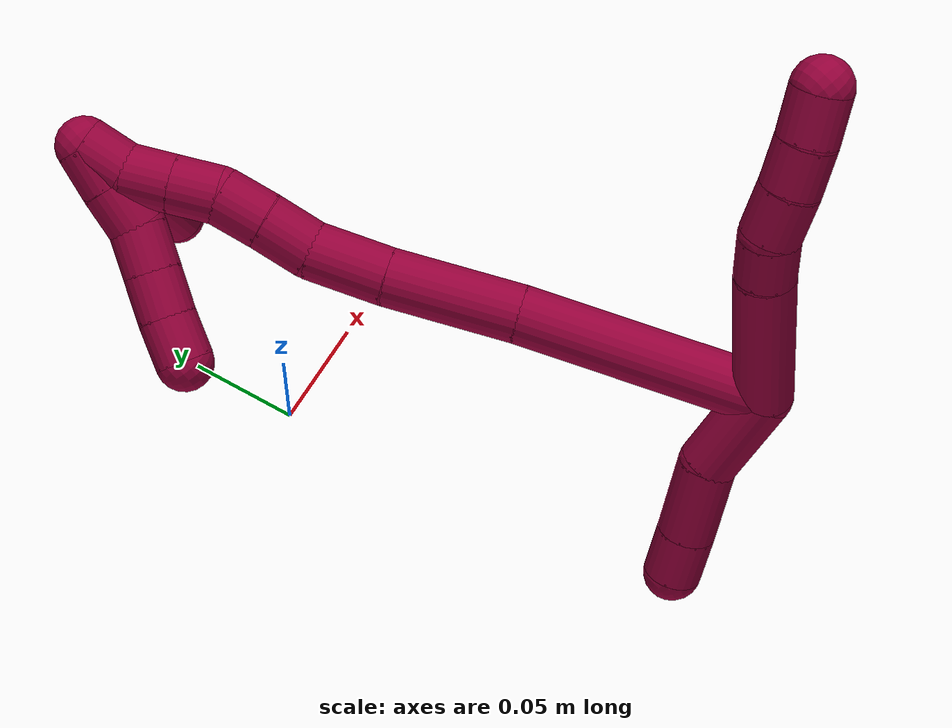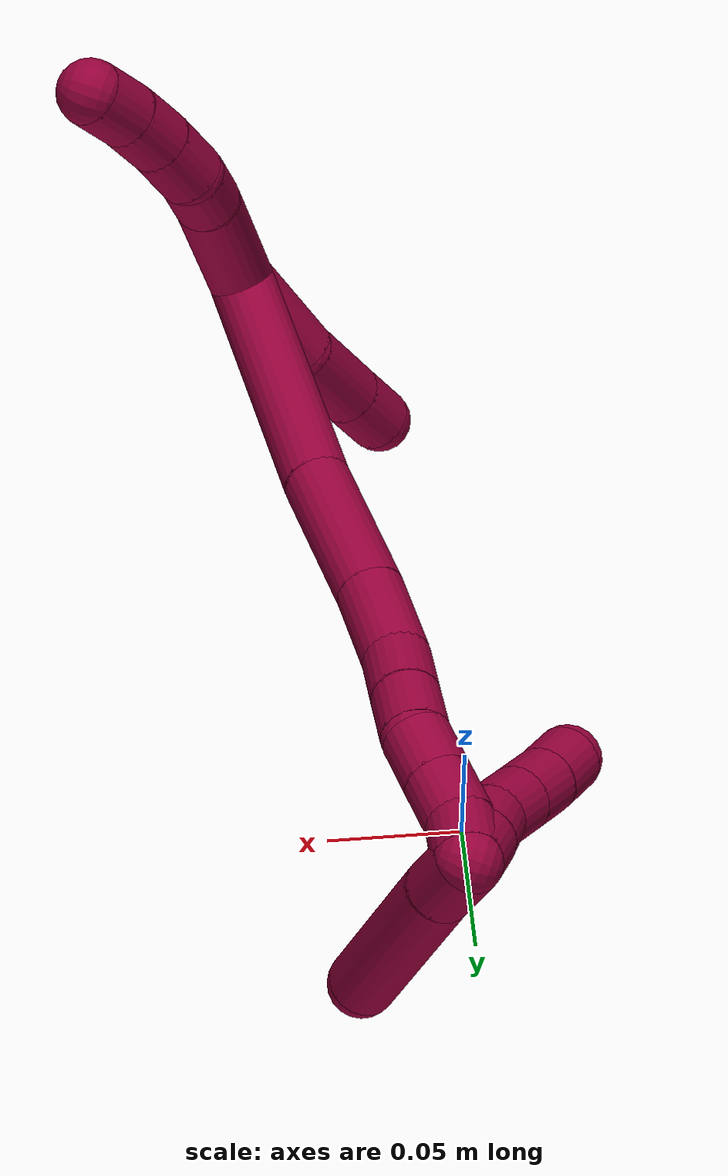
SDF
<sdf version="1.7">
 <world name="default">
  <model name="8">
   <static>0</static>
   <link name="8">
    <collision name="collision-cylinder-e_1_2_8">
     <pose>0.023971 0.021354 -0.010602 -2.03162 0.788124 -1.18155</pose>
     <geometry><cylinder><radius>0.0125</radius><length>0.067616</length></cylinder></geometry>
     <surface>
      <friction><ode><mu>1.16</mu><mu2>1.16</mu2><slip1>0</slip1><slip2>0</slip2></ode></friction>
      <contact><ode><kp>1e+06</kp><kd>1</kd><max_vel>0</max_vel><min_depth>0.001</min_depth></ode></contact>
     </surface>
    </collision>
    <visual name="visual-cylinder-e_1_2_8">
     <pose>0.023971 0.021354 -0.010602 -2.03162 0.788124 -1.18155</pose>
     <geometry><cylinder><radius>0.0125</radius><length>0.067616</length></cylinder></geometry>
     <material><ambient>0.584314 0 0.227451 1</ambient></material>
    </visual>
    <collision name="collision-cylinder-e_2_8_9">
     <pose>0.054809 0.048769 -0.02526 -2.1606 0.755319 -1.27781</pose>
     <geometry><cylinder><radius>0.0125</radius><length>0.020036</length></cylinder></geometry>
     <surface>
      <friction><ode><mu>1.16</mu><mu2>1.16</mu2><slip1>0</slip1><slip2>0</slip2></ode></friction>
      <contact><ode><kp>1e+06</kp><kd>1</kd><max_vel>0</max_vel><min_depth>0.001</min_depth></ode></contact>
     </surface>
    </collision>
    <visual name="visual-cylinder-e_2_8_9">
     <pose>0.054809 0.048769 -0.02526 -2.1606 0.755319 -1.27781</pose>
     <geometry><cylinder><radius>0.0125</radius><length>0.020036</length></cylinder></geometry>
     <material><ambient>0.584314 0 0.227451 1</ambient></material>
    </visual>
    <collision name="collision-cylinder-e_3_9_10">
     <pose>0.068176 0.059757 -0.036493 -2.53995 0.641335 -1.63894</pose>
     <geometry><cylinder><radius>0.0125</radius><length>0.021726</length></cylinder></geometry>
     <surface>
      <friction><ode><mu>1.16</mu><mu2>1.16</mu2><slip1>0</slip1><slip2>0</slip2></ode></friction>
      <contact><ode><kp>1e+06</kp><kd>1</kd><max_vel>0</max_vel><min_depth>0.001</min_depth></ode></contact>
     </surface>
    </collision>
    <visual name="visual-cylinder-e_3_9_10">
     <pose>0.068176 0.059757 -0.036493 -2.53995 0.641335 -1.63894</pose>
     <geometry><cylinder><radius>0.0125</radius><length>0.021726</length></cylinder></geometry>
     <material><ambient>0.584314 0 0.227451 1</ambient></material>
    </visual>
    <collision name="collision-cylinder-e_4_10_11">
     <pose>0.079995 0.06985 -0.050425 -2.48881 0.558963 -1.40649</pose>
     <geometry><cylinder><radius>0.0125</radius><length>0.020065</length></cylinder></geometry>
     <surface>
      <friction><ode><mu>1.16</mu><mu2>1.16</mu2><slip1>0</slip1><slip2>0</slip2></ode></friction>
      <contact><ode><kp>1e+06</kp><kd>1</kd><max_vel>0</max_vel><min_depth>0.001</min_depth></ode></contact>
     </surface>
    </collision>
    <visual name="visual-cylinder-e_4_10_11">
     <pose>0.079995 0.06985 -0.050425 -2.48881 0.558963 -1.40649</pose>
     <geometry><cylinder><radius>0.0125</radius><length>0.020065</length></cylinder></geometry>
     <material><ambient>0.584314 0 0.227451 1</ambient></material>
    </visual>
    <collision name="collision-cylinder-e_5_11_6">
     <pose>0.089925 0.080892 -0.064245 -2.44768 0.465043 -1.15964</pose>
     <geometry><cylinder><radius>0.0125</radius><length>0.020557</length></cylinder></geometry>
     <surface>
      <friction><ode><mu>1.16</mu><mu2>1.16</mu2><slip1>0</slip1><slip2>0</slip2></ode></friction>
      <contact><ode><kp>1e+06</kp><kd>1</kd><max_vel>0</max_vel><min_depth>0.001</min_depth></ode></contact>
     </surface>
    </collision>
    <visual name="visual-cylinder-e_5_11_6">
     <pose>0.089925 0.080892 -0.064245 -2.44768 0.465043 -1.15964</pose>
     <geometry><cylinder><radius>0.0125</radius><length>0.020557</length></cylinder></geometry>
     <material><ambient>0.584314 0 0.227451 1</ambient></material>
    </visual>
    <collision name="collision-cylinder-e_1_2_12">
     <pose>-0.012522 -0.00493 0.01552 0.307591 -0.655519 -0.105323</pose>
     <geometry><cylinder><radius>0.0125</radius><length>0.041084</length></cylinder></geometry>
     <surface>
      <friction><ode><mu>1.16</mu><mu2>1.16</mu2><slip1>0</slip1><slip2>0</slip2></ode></friction>
      <contact><ode><kp>1e+06</kp><kd>1</kd><max_vel>0</max_vel><min_depth>0.001</min_depth></ode></contact>
     </surface>
    </collision>
    <visual name="visual-cylinder-e_1_2_12">
     <pose>-0.012522 -0.00493 0.01552 0.307591 -0.655519 -0.105323</pose>
     <geometry><cylinder><radius>0.0125</radius><length>0.041084</length></cylinder></geometry>
     <material><ambient>0.584314 0 0.227451 1</ambient></material>
    </visual>
    <collision name="collision-cylinder-e_2_12_13">
     <pose>-0.03533 -0.019584 0.042369 0.709248 -0.6033 -0.229409</pose>
     <geometry><cylinder><radius>0.0125</radius><length>0.036262</length></cylinder></geometry>
     <surface>
      <friction><ode><mu>1.16</mu><mu2>1.16</mu2><slip1>0</slip1><slip2>0</slip2></ode></friction>
      <contact><ode><kp>1e+06</kp><kd>1</kd><max_vel>0</max_vel><min_depth>0.001</min_depth></ode></contact>
     </surface>
    </collision>
    <visual name="visual-cylinder-e_2_12_13">
     <pose>-0.03533 -0.019584 0.042369 0.709248 -0.6033 -0.229409</pose>
     <geometry><cylinder><radius>0.0125</radius><length>0.036262</length></cylinder></geometry>
     <material><ambient>0.584314 0 0.227451 1</ambient></material>
    </visual>
    <collision name="collision-cylinder-e_3_13_5">
     <pose>-0.051917 -0.035181 0.061055 0.67385 -0.589817 -0.212009</pose>
     <geometry><cylinder><radius>0.0125</radius><length>0.022655</length></cylinder></geometry>
     <surface>
      <friction><ode><mu>1.16</mu><mu2>1.16</mu2><slip1>0</slip1><slip2>0</slip2></ode></friction>
      <contact><ode><kp>1e+06</kp><kd>1</kd><max_vel>0</max_vel><min_depth>0.001</min_depth></ode></contact>
     </surface>
    </collision>
    <visual name="visual-cylinder-e_3_13_5">
     <pose>-0.051917 -0.035181 0.061055 0.67385 -0.589817 -0.212009</pose>
     <geometry><cylinder><radius>0.0125</radius><length>0.022655</length></cylinder></geometry>
     <material><ambient>0.584314 0 0.227451 1</ambient></material>
    </visual>
    <collision name="collision-cylinder-e_1_2_14">
     <pose>-0.010588 0.044446 0.025619 -1.0479 -0.203536 0.117878</pose>
     <geometry><cylinder><radius>0.0125</radius><length>0.104764</length></cylinder></geometry>
     <surface>
      <friction><ode><mu>1.16</mu><mu2>1.16</mu2><slip1>0</slip1><slip2>0</slip2></ode></friction>
      <contact><ode><kp>1e+06</kp><kd>1</kd><max_vel>0</max_vel><min_depth>0.001</min_depth></ode></contact>
     </surface>
    </collision>
    <visual name="visual-cylinder-e_1_2_14">
     <pose>-0.010588 0.044446 0.025619 -1.0479 -0.203536 0.117878</pose>
     <geometry><cylinder><radius>0.0125</radius><length>0.104764</length></cylinder></geometry>
     <material><ambient>0.584314 0 0.227451 1</ambient></material>
    </visual>
    <collision name="collision-cylinder-e_2_14_15">
     <pose>-0.025661 0.112485 0.066522 -0.995971 -0.158189 0.086132</pose>
     <geometry><cylinder><radius>0.0125</radius><length>0.056934</length></cylinder></geometry>
     <surface>
      <friction><ode><mu>1.16</mu><mu2>1.16</mu2><slip1>0</slip1><slip2>0</slip2></ode></friction>
      <contact><ode><kp>1e+06</kp><kd>1</kd><max_vel>0</max_vel><min_depth>0.001</min_depth></ode></contact>
     </surface>
    </collision>
    <visual name="visual-cylinder-e_2_14_15">
     <pose>-0.025661 0.112485 0.066522 -0.995971 -0.158189 0.086132</pose>
     <geometry><cylinder><radius>0.0125</radius><length>0.056934</length></cylinder></geometry>
     <material><ambient>0.584314 0 0.227451 1</ambient></material>
    </visual>
    <collision name="collision-cylinder-e_3_15_16">
     <pose>-0.032949 0.150429 0.089831 -1.06091 -0.1689 0.09922</pose>
     <geometry><cylinder><radius>0.0125</radius><length>0.033359</length></cylinder></geometry>
     <surface>
      <friction><ode><mu>1.16</mu><mu2>1.16</mu2><slip1>0</slip1><slip2>0</slip2></ode></friction>
      <contact><ode><kp>1e+06</kp><kd>1</kd><max_vel>0</max_vel><min_depth>0.001</min_depth></ode></contact>
     </surface>
    </collision>
    <visual name="visual-cylinder-e_3_15_16">
     <pose>-0.032949 0.150429 0.089831 -1.06091 -0.1689 0.09922</pose>
     <geometry><cylinder><radius>0.0125</radius><length>0.033359</length></cylinder></geometry>
     <material><ambient>0.584314 0 0.227451 1</ambient></material>
    </visual>
    <collision name="collision-cylinder-e_4_16_17">
     <pose>-0.036064 0.17558 0.101229 -1.26806 -0.027501 0.020223</pose>
     <geometry><cylinder><radius>0.0125</radius><length>0.022637</length></cylinder></geometry>
     <surface>
      <friction><ode><mu>1.16</mu><mu2>1.16</mu2><slip1>0</slip1><slip2>0</slip2></ode></friction>
      <contact><ode><kp>1e+06</kp><kd>1</kd><max_vel>0</max_vel><min_depth>0.001</min_depth></ode></contact>
     </surface>
    </collision>
    <visual name="visual-cylinder-e_4_16_17">
     <pose>-0.036064 0.17558 0.101229 -1.26806 -0.027501 0.020223</pose>
     <geometry><cylinder><radius>0.0125</radius><length>0.022637</length></cylinder></geometry>
     <material><ambient>0.584314 0 0.227451 1</ambient></material>
    </visual>
    <collision name="collision-cylinder-e_5_17_18">
     <pose>-0.037112 0.196469 0.108113 -1.23594 -0.068892 0.048982</pose>
     <geometry><cylinder><radius>0.0125</radius><length>0.021417</length></cylinder></geometry>
     <surface>
      <friction><ode><mu>1.16</mu><mu2>1.16</mu2><slip1>0</slip1><slip2>0</slip2></ode></friction>
      <contact><ode><kp>1e+06</kp><kd>1</kd><max_vel>0</max_vel><min_depth>0.001</min_depth></ode></contact>
     </surface>
    </collision>
    <visual name="visual-cylinder-e_5_17_18">
     <pose>-0.037112 0.196469 0.108113 -1.23594 -0.068892 0.048982</pose>
     <geometry><cylinder><radius>0.0125</radius><length>0.021417</length></cylinder></geometry>
     <material><ambient>0.584314 0 0.227451 1</ambient></material>
    </visual>
    <collision name="collision-cylinder-e_6_18_19">
     <pose>-0.039486 0.214836 0.117403 -0.961244 -0.160767 0.083956</pose>
     <geometry><cylinder><radius>0.0125</radius><length>0.020452</length></cylinder></geometry>
     <surface>
      <friction><ode><mu>1.16</mu><mu2>1.16</mu2><slip1>0</slip1><slip2>0</slip2></ode></friction>
      <contact><ode><kp>1e+06</kp><kd>1</kd><max_vel>0</max_vel><min_depth>0.001</min_depth></ode></contact>
     </surface>
    </collision>
    <visual name="visual-cylinder-e_6_18_19">
     <pose>-0.039486 0.214836 0.117403 -0.961244 -0.160767 0.083956</pose>
     <geometry><cylinder><radius>0.0125</radius><length>0.020452</length></cylinder></geometry>
     <material><ambient>0.584314 0 0.227451 1</ambient></material>
    </visual>
    <collision name="collision-cylinder-e_7_19_20">
     <pose>-0.042619 0.231389 0.128895 -0.966614 -0.14761 0.077571</pose>
     <geometry><cylinder><radius>0.0125</radius><length>0.020337</length></cylinder></geometry>
     <surface>
      <friction><ode><mu>1.16</mu><mu2>1.16</mu2><slip1>0</slip1><slip2>0</slip2></ode></friction>
      <contact><ode><kp>1e+06</kp><kd>1</kd><max_vel>0</max_vel><min_depth>0.001</min_depth></ode></contact>
     </surface>
    </collision>
    <visual name="visual-cylinder-e_7_19_20">
     <pose>-0.042619 0.231389 0.128895 -0.966614 -0.14761 0.077571</pose>
     <geometry><cylinder><radius>0.0125</radius><length>0.020337</length></cylinder></geometry>
     <material><ambient>0.584314 0 0.227451 1</ambient></material>
    </visual>
    <collision name="collision-cylinder-e_8_20_1">
     <pose>-0.04459 0.249316 0.137379 -1.29128 -0.047313 0.035646</pose>
     <geometry><cylinder><radius>0.0125</radius><length>0.0201</length></cylinder></geometry>
     <surface>
      <friction><ode><mu>1.16</mu><mu2>1.16</mu2><slip1>0</slip1><slip2>0</slip2></ode></friction>
      <contact><ode><kp>1e+06</kp><kd>1</kd><max_vel>0</max_vel><min_depth>0.001</min_depth></ode></contact>
     </surface>
    </collision>
    <visual name="visual-cylinder-e_8_20_1">
     <pose>-0.04459 0.249316 0.137379 -1.29128 -0.047313 0.035646</pose>
     <geometry><cylinder><radius>0.0125</radius><length>0.0201</length></cylinder></geometry>
     <material><ambient>0.584314 0 0.227451 1</ambient></material>
    </visual>
    <collision name="collision-cylinder-e_1_1_21">
     <pose>-0.046534 0.249201 0.141735 1.40974 -0.147386 -0.125436</pose>
     <geometry><cylinder><radius>0.0125</radius><length>0.02</length></cylinder></geometry>
     <surface>
      <friction><ode><mu>1.16</mu><mu2>1.16</mu2><slip1>0</slip1><slip2>0</slip2></ode></friction>
      <contact><ode><kp>1e+06</kp><kd>1</kd><max_vel>0</max_vel><min_depth>0.001</min_depth></ode></contact>
     </surface>
    </collision>
    <visual name="visual-cylinder-e_1_1_21">
     <pose>-0.046534 0.249201 0.141735 1.40974 -0.147386 -0.125436</pose>
     <geometry><cylinder><radius>0.0125</radius><length>0.02</length></cylinder></geometry>
     <material><ambient>0.584314 0 0.227451 1</ambient></material>
    </visual>
    <collision name="collision-cylinder-e_2_21_22">
     <pose>-0.049356 0.22959 0.144414 1.46023 -0.13583 -0.121622</pose>
     <geometry><cylinder><radius>0.0125</radius><length>0.02</length></cylinder></geometry>
     <surface>
      <friction><ode><mu>1.16</mu><mu2>1.16</mu2><slip1>0</slip1><slip2>0</slip2></ode></friction>
      <contact><ode><kp>1e+06</kp><kd>1</kd><max_vel>0</max_vel><min_depth>0.001</min_depth></ode></contact>
     </surface>
    </collision>
    <visual name="visual-cylinder-e_2_21_22">
     <pose>-0.049356 0.22959 0.144414 1.46023 -0.13583 -0.121622</pose>
     <geometry><cylinder><radius>0.0125</radius><length>0.02</length></cylinder></geometry>
     <material><ambient>0.584314 0 0.227451 1</ambient></material>
    </visual>
    <collision name="collision-cylinder-e_3_22_23">
     <pose>-0.051116 0.210516 0.149342 1.17695 -0.040594 -0.027093</pose>
     <geometry><cylinder><radius>0.0125</radius><length>0.02</length></cylinder></geometry>
     <surface>
      <friction><ode><mu>1.16</mu><mu2>1.16</mu2><slip1>0</slip1><slip2>0</slip2></ode></friction>
      <contact><ode><kp>1e+06</kp><kd>1</kd><max_vel>0</max_vel><min_depth>0.001</min_depth></ode></contact>
     </surface>
    </collision>
    <visual name="visual-cylinder-e_3_22_23">
     <pose>-0.051116 0.210516 0.149342 1.17695 -0.040594 -0.027093</pose>
     <geometry><cylinder><radius>0.0125</radius><length>0.02</length></cylinder></geometry>
     <material><ambient>0.584314 0 0.227451 1</ambient></material>
    </visual>
    <collision name="collision-cylinder-e_4_23_24">
     <pose>-0.051695 0.192074 0.157055 1.17239 -0.017272 -0.01147</pose>
     <geometry><cylinder><radius>0.0125</radius><length>0.02</length></cylinder></geometry>
     <surface>
      <friction><ode><mu>1.16</mu><mu2>1.16</mu2><slip1>0</slip1><slip2>0</slip2></ode></friction>
      <contact><ode><kp>1e+06</kp><kd>1</kd><max_vel>0</max_vel><min_depth>0.001</min_depth></ode></contact>
     </surface>
    </collision>
    <visual name="visual-cylinder-e_4_23_24">
     <pose>-0.051695 0.192074 0.157055 1.17239 -0.017272 -0.01147</pose>
     <geometry><cylinder><radius>0.0125</radius><length>0.02</length></cylinder></geometry>
     <material><ambient>0.584314 0 0.227451 1</ambient></material>
    </visual>
    <collision name="collision-cylinder-e_5_24_4">
     <pose>-0.051761 0.173423 0.164244 1.23339 0.010617 0.007526</pose>
     <geometry><cylinder><radius>0.0125</radius><length>0.02</length></cylinder></geometry>
     <surface>
      <friction><ode><mu>1.16</mu><mu2>1.16</mu2><slip1>0</slip1><slip2>0</slip2></ode></friction>
      <contact><ode><kp>1e+06</kp><kd>1</kd><max_vel>0</max_vel><min_depth>0.001</min_depth></ode></contact>
     </surface>
    </collision>
    <visual name="visual-cylinder-e_5_24_4">
     <pose>-0.051761 0.173423 0.164244 1.23339 0.010617 0.007526</pose>
     <geometry><cylinder><radius>0.0125</radius><length>0.02</length></cylinder></geometry>
     <material><ambient>0.584314 0 0.227451 1</ambient></material>
    </visual>
    <collision name="collision-cylinder-e_1_1_25">
     <pose>-0.055665 0.254391 0.137821 2.04153 -1.11997 -1.59302</pose>
     <geometry><cylinder><radius>0.0125</radius><length>0.023554</length></cylinder></geometry>
     <surface>
      <friction><ode><mu>1.16</mu><mu2>1.16</mu2><slip1>0</slip1><slip2>0</slip2></ode></friction>
      <contact><ode><kp>1e+06</kp><kd>1</kd><max_vel>0</max_vel><min_depth>0.001</min_depth></ode></contact>
     </surface>
    </collision>
    <visual name="visual-cylinder-e_1_1_25">
     <pose>-0.055665 0.254391 0.137821 2.04153 -1.11997 -1.59302</pose>
     <geometry><cylinder><radius>0.0125</radius><length>0.023554</length></cylinder></geometry>
     <material><ambient>0.584314 0 0.227451 1</ambient></material>
    </visual>
    <collision name="collision-cylinder-e_2_25_3">
     <pose>-0.100612 0.233838 0.130399 1.87941 -1.11652 -1.41431</pose>
     <geometry><cylinder><radius>0.0125</radius><length>0.076446</length></cylinder></geometry>
     <surface>
      <friction><ode><mu>1.16</mu><mu2>1.16</mu2><slip1>0</slip1><slip2>0</slip2></ode></friction>
      <contact><ode><kp>1e+06</kp><kd>1</kd><max_vel>0</max_vel><min_depth>0.001</min_depth></ode></contact>
     </surface>
    </collision>
    <visual name="visual-cylinder-e_2_25_3">
     <pose>-0.100612 0.233838 0.130399 1.87941 -1.11652 -1.41431</pose>
     <geometry><cylinder><radius>0.0125</radius><length>0.076446</length></cylinder></geometry>
     <material><ambient>0.584314 0 0.227451 1</ambient></material>
    </visual>
    <collision name="collision-sphere-3">
     <pose>-0.134958 0.217857 0.125304 0 -0 0</pose>
     <geometry><sphere><radius>0.0125</radius></sphere></geometry>
     <surface>
      <friction><ode><mu>1.16</mu><mu2>1.16</mu2><slip1>0</slip1><slip2>0</slip2></ode></friction>
      <contact><ode><kp>1e+06</kp><kd>1</kd><max_vel>0</max_vel><min_depth>0.001</min_depth></ode></contact>
     </surface>
    </collision>
    <visual name="visual-sphere-3">
     <pose>-0.134958 0.217857 0.125304 0 -0 0</pose>
     <geometry><sphere><radius>0.0125</radius></sphere></geometry>
     <material><ambient>0.584314 0 0.227451 1</ambient></material>
    </visual>
    <collision name="collision-sphere-25">
     <pose>-0.066266 0.249818 0.135494 0 -0 0</pose>
     <geometry><sphere><radius>0.0125</radius></sphere></geometry>
     <surface>
      <friction><ode><mu>1.16</mu><mu2>1.16</mu2><slip1>0</slip1><slip2>0</slip2></ode></friction>
      <contact><ode><kp>1e+06</kp><kd>1</kd><max_vel>0</max_vel><min_depth>0.001</min_depth></ode></contact>
     </surface>
    </collision>
    <visual name="visual-sphere-25">
     <pose>-0.066266 0.249818 0.135494 0 -0 0</pose>
     <geometry><sphere><radius>0.0125</radius></sphere></geometry>
     <material><ambient>0.584314 0 0.227451 1</ambient></material>
    </visual>
    <collision name="collision-sphere-4">
     <pose>-0.051655 0.163987 0.167554 0 -0 0</pose>
     <geometry><sphere><radius>0.0125</radius></sphere></geometry>
     <surface>
      <friction><ode><mu>1.16</mu><mu2>1.16</mu2><slip1>0</slip1><slip2>0</slip2></ode></friction>
      <contact><ode><kp>1e+06</kp><kd>1</kd><max_vel>0</max_vel><min_depth>0.001</min_depth></ode></contact>
     </surface>
    </collision>
    <visual name="visual-sphere-4">
     <pose>-0.051655 0.163987 0.167554 0 -0 0</pose>
     <geometry><sphere><radius>0.0125</radius></sphere></geometry>
     <material><ambient>0.584314 0 0.227451 1</ambient></material>
    </visual>
    <collision name="collision-sphere-24">
     <pose>-0.051867 0.182858 0.160934 0 -0 0</pose>
     <geometry><sphere><radius>0.0125</radius></sphere></geometry>
     <surface>
      <friction><ode><mu>1.16</mu><mu2>1.16</mu2><slip1>0</slip1><slip2>0</slip2></ode></friction>
      <contact><ode><kp>1e+06</kp><kd>1</kd><max_vel>0</max_vel><min_depth>0.001</min_depth></ode></contact>
     </surface>
    </collision>
    <visual name="visual-sphere-24">
     <pose>-0.051867 0.182858 0.160934 0 -0 0</pose>
     <geometry><sphere><radius>0.0125</radius></sphere></geometry>
     <material><ambient>0.584314 0 0.227451 1</ambient></material>
    </visual>
    <collision name="collision-sphere-23">
     <pose>-0.051522 0.201289 0.153176 0 -0 0</pose>
     <geometry><sphere><radius>0.0125</radius></sphere></geometry>
     <surface>
      <friction><ode><mu>1.16</mu><mu2>1.16</mu2><slip1>0</slip1><slip2>0</slip2></ode></friction>
      <contact><ode><kp>1e+06</kp><kd>1</kd><max_vel>0</max_vel><min_depth>0.001</min_depth></ode></contact>
     </surface>
    </collision>
    <visual name="visual-sphere-23">
     <pose>-0.051522 0.201289 0.153176 0 -0 0</pose>
     <geometry><sphere><radius>0.0125</radius></sphere></geometry>
     <material><ambient>0.584314 0 0.227451 1</ambient></material>
    </visual>
    <collision name="collision-sphere-22">
     <pose>-0.05071 0.219743 0.145507 0 -0 0</pose>
     <geometry><sphere><radius>0.0125</radius></sphere></geometry>
     <surface>
      <friction><ode><mu>1.16</mu><mu2>1.16</mu2><slip1>0</slip1><slip2>0</slip2></ode></friction>
      <contact><ode><kp>1e+06</kp><kd>1</kd><max_vel>0</max_vel><min_depth>0.001</min_depth></ode></contact>
     </surface>
    </collision>
    <visual name="visual-sphere-22">
     <pose>-0.05071 0.219743 0.145507 0 -0 0</pose>
     <geometry><sphere><radius>0.0125</radius></sphere></geometry>
     <material><ambient>0.584314 0 0.227451 1</ambient></material>
    </visual>
    <collision name="collision-sphere-21">
     <pose>-0.048002 0.239438 0.143321 0 -0 0</pose>
     <geometry><sphere><radius>0.0125</radius></sphere></geometry>
     <surface>
      <friction><ode><mu>1.16</mu><mu2>1.16</mu2><slip1>0</slip1><slip2>0</slip2></ode></friction>
      <contact><ode><kp>1e+06</kp><kd>1</kd><max_vel>0</max_vel><min_depth>0.001</min_depth></ode></contact>
     </surface>
    </collision>
    <visual name="visual-sphere-21">
     <pose>-0.048002 0.239438 0.143321 0 -0 0</pose>
     <geometry><sphere><radius>0.0125</radius></sphere></geometry>
     <material><ambient>0.584314 0 0.227451 1</ambient></material>
    </visual>
    <collision name="collision-sphere-1">
     <pose>-0.045065 0.258965 0.140148 0 -0 0</pose>
     <geometry><sphere><radius>0.0125</radius></sphere></geometry>
     <surface>
      <friction><ode><mu>1.16</mu><mu2>1.16</mu2><slip1>0</slip1><slip2>0</slip2></ode></friction>
      <contact><ode><kp>1e+06</kp><kd>1</kd><max_vel>0</max_vel><min_depth>0.001</min_depth></ode></contact>
     </surface>
    </collision>
    <visual name="visual-sphere-1">
     <pose>-0.045065 0.258965 0.140148 0 -0 0</pose>
     <geometry><sphere><radius>0.0125</radius></sphere></geometry>
     <material><ambient>0.584314 0 0.227451 1</ambient></material>
    </visual>
    <collision name="collision-sphere-6">
     <pose>0.094535 0.086767 -0.071307 0 -0 0</pose>
     <geometry><sphere><radius>0.0125</radius></sphere></geometry>
     <surface>
      <friction><ode><mu>1.16</mu><mu2>1.16</mu2><slip1>0</slip1><slip2>0</slip2></ode></friction>
      <contact><ode><kp>1e+06</kp><kd>1</kd><max_vel>0</max_vel><min_depth>0.001</min_depth></ode></contact>
     </surface>
    </collision>
    <visual name="visual-sphere-6">
     <pose>0.094535 0.086767 -0.071307 0 -0 0</pose>
     <geometry><sphere><radius>0.0125</radius></sphere></geometry>
     <material><ambient>0.584314 0 0.227451 1</ambient></material>
    </visual>
    <collision name="collision-sphere-11">
     <pose>0.085315 0.075016 -0.057182 0 -0 0</pose>
     <geometry><sphere><radius>0.0125</radius></sphere></geometry>
     <surface>
      <friction><ode><mu>1.16</mu><mu2>1.16</mu2><slip1>0</slip1><slip2>0</slip2></ode></friction>
      <contact><ode><kp>1e+06</kp><kd>1</kd><max_vel>0</max_vel><min_depth>0.001</min_depth></ode></contact>
     </surface>
    </collision>
    <visual name="visual-sphere-11">
     <pose>0.085315 0.075016 -0.057182 0 -0 0</pose>
     <geometry><sphere><radius>0.0125</radius></sphere></geometry>
     <material><ambient>0.584314 0 0.227451 1</ambient></material>
    </visual>
    <collision name="collision-sphere-10">
     <pose>0.074675 0.064684 -0.043669 0 -0 0</pose>
     <geometry><sphere><radius>0.0125</radius></sphere></geometry>
     <surface>
      <friction><ode><mu>1.16</mu><mu2>1.16</mu2><slip1>0</slip1><slip2>0</slip2></ode></friction>
      <contact><ode><kp>1e+06</kp><kd>1</kd><max_vel>0</max_vel><min_depth>0.001</min_depth></ode></contact>
     </surface>
    </collision>
    <visual name="visual-sphere-10">
     <pose>0.074675 0.064684 -0.043669 0 -0 0</pose>
     <geometry><sphere><radius>0.0125</radius></sphere></geometry>
     <material><ambient>0.584314 0 0.227451 1</ambient></material>
    </visual>
    <collision name="collision-sphere-9">
     <pose>0.061677 0.05483 -0.029317 0 -0 0</pose>
     <geometry><sphere><radius>0.0125</radius></sphere></geometry>
     <surface>
      <friction><ode><mu>1.16</mu><mu2>1.16</mu2><slip1>0</slip1><slip2>0</slip2></ode></friction>
      <contact><ode><kp>1e+06</kp><kd>1</kd><max_vel>0</max_vel><min_depth>0.001</min_depth></ode></contact>
     </surface>
    </collision>
    <visual name="visual-sphere-9">
     <pose>0.061677 0.05483 -0.029317 0 -0 0</pose>
     <geometry><sphere><radius>0.0125</radius></sphere></geometry>
     <material><ambient>0.584314 0 0.227451 1</ambient></material>
    </visual>
    <collision name="collision-sphere-2">
     <geometry><sphere><radius>0.0125</radius></sphere></geometry>
     <surface>
      <friction><ode><mu>1.16</mu><mu2>1.16</mu2><slip1>0</slip1><slip2>0</slip2></ode></friction>
      <contact><ode><kp>1e+06</kp><kd>1</kd><max_vel>0</max_vel><min_depth>0.001</min_depth></ode></contact>
     </surface>
    </collision>
    <visual name="visual-sphere-2">
     <geometry><sphere><radius>0.0125</radius></sphere></geometry>
     <material><ambient>0.584314 0 0.227451 1</ambient></material>
    </visual>
    <collision name="collision-sphere-19">
     <pose>-0.041123 0.223112 0.123181 0 -0 0</pose>
     <geometry><sphere><radius>0.0125</radius></sphere></geometry>
     <surface>
      <friction><ode><mu>1.16</mu><mu2>1.16</mu2><slip1>0</slip1><slip2>0</slip2></ode></friction>
      <contact><ode><kp>1e+06</kp><kd>1</kd><max_vel>0</max_vel><min_depth>0.001</min_depth></ode></contact>
     </surface>
    </collision>
    <visual name="visual-sphere-19">
     <pose>-0.041123 0.223112 0.123181 0 -0 0</pose>
     <geometry><sphere><radius>0.0125</radius></sphere></geometry>
     <material><ambient>0.584314 0 0.227451 1</ambient></material>
    </visual>
    <collision name="collision-sphere-8">
     <pose>0.047942 0.042707 -0.021203 0 -0 0</pose>
     <geometry><sphere><radius>0.0125</radius></sphere></geometry>
     <surface>
      <friction><ode><mu>1.16</mu><mu2>1.16</mu2><slip1>0</slip1><slip2>0</slip2></ode></friction>
      <contact><ode><kp>1e+06</kp><kd>1</kd><max_vel>0</max_vel><min_depth>0.001</min_depth></ode></contact>
     </surface>
    </collision>
    <visual name="visual-sphere-8">
     <pose>0.047942 0.042707 -0.021203 0 -0 0</pose>
     <geometry><sphere><radius>0.0125</radius></sphere></geometry>
     <material><ambient>0.584314 0 0.227451 1</ambient></material>
    </visual>
    <collision name="collision-sphere-12">
     <pose>-0.025043 -0.00986 0.03104 0 -0 0</pose>
     <geometry><sphere><radius>0.0125</radius></sphere></geometry>
     <surface>
      <friction><ode><mu>1.16</mu><mu2>1.16</mu2><slip1>0</slip1><slip2>0</slip2></ode></friction>
      <contact><ode><kp>1e+06</kp><kd>1</kd><max_vel>0</max_vel><min_depth>0.001</min_depth></ode></contact>
     </surface>
    </collision>
    <visual name="visual-sphere-12">
     <pose>-0.025043 -0.00986 0.03104 0 -0 0</pose>
     <geometry><sphere><radius>0.0125</radius></sphere></geometry>
     <material><ambient>0.584314 0 0.227451 1</ambient></material>
    </visual>
    <collision name="collision-sphere-13">
     <pose>-0.045617 -0.029307 0.053699 0 -0 0</pose>
     <geometry><sphere><radius>0.0125</radius></sphere></geometry>
     <surface>
      <friction><ode><mu>1.16</mu><mu2>1.16</mu2><slip1>0</slip1><slip2>0</slip2></ode></friction>
      <contact><ode><kp>1e+06</kp><kd>1</kd><max_vel>0</max_vel><min_depth>0.001</min_depth></ode></contact>
     </surface>
    </collision>
    <visual name="visual-sphere-13">
     <pose>-0.045617 -0.029307 0.053699 0 -0 0</pose>
     <geometry><sphere><radius>0.0125</radius></sphere></geometry>
     <material><ambient>0.584314 0 0.227451 1</ambient></material>
    </visual>
    <collision name="collision-sphere-5">
     <pose>-0.058218 -0.041055 0.068411 0 -0 0</pose>
     <geometry><sphere><radius>0.0125</radius></sphere></geometry>
     <surface>
      <friction><ode><mu>1.16</mu><mu2>1.16</mu2><slip1>0</slip1><slip2>0</slip2></ode></friction>
      <contact><ode><kp>1e+06</kp><kd>1</kd><max_vel>0</max_vel><min_depth>0.001</min_depth></ode></contact>
     </surface>
    </collision>
    <visual name="visual-sphere-5">
     <pose>-0.058218 -0.041055 0.068411 0 -0 0</pose>
     <geometry><sphere><radius>0.0125</radius></sphere></geometry>
     <material><ambient>0.584314 0 0.227451 1</ambient></material>
    </visual>
    <collision name="collision-sphere-14">
     <pose>-0.021176 0.088891 0.051238 0 -0 0</pose>
     <geometry><sphere><radius>0.0125</radius></sphere></geometry>
     <surface>
      <friction><ode><mu>1.16</mu><mu2>1.16</mu2><slip1>0</slip1><slip2>0</slip2></ode></friction>
      <contact><ode><kp>1e+06</kp><kd>1</kd><max_vel>0</max_vel><min_depth>0.001</min_depth></ode></contact>
     </surface>
    </collision>
    <visual name="visual-sphere-14">
     <pose>-0.021176 0.088891 0.051238 0 -0 0</pose>
     <geometry><sphere><radius>0.0125</radius></sphere></geometry>
     <material><ambient>0.584314 0 0.227451 1</ambient></material>
    </visual>
    <collision name="collision-sphere-15">
     <pose>-0.030145 0.136078 0.081806 0 -0 0</pose>
     <geometry><sphere><radius>0.0125</radius></sphere></geometry>
     <surface>
      <friction><ode><mu>1.16</mu><mu2>1.16</mu2><slip1>0</slip1><slip2>0</slip2></ode></friction>
      <contact><ode><kp>1e+06</kp><kd>1</kd><max_vel>0</max_vel><min_depth>0.001</min_depth></ode></contact>
     </surface>
    </collision>
    <visual name="visual-sphere-15">
     <pose>-0.030145 0.136078 0.081806 0 -0 0</pose>
     <geometry><sphere><radius>0.0125</radius></sphere></geometry>
     <material><ambient>0.584314 0 0.227451 1</ambient></material>
    </visual>
    <collision name="collision-sphere-16">
     <pose>-0.035753 0.16478 0.097856 0 -0 0</pose>
     <geometry><sphere><radius>0.0125</radius></sphere></geometry>
     <surface>
      <friction><ode><mu>1.16</mu><mu2>1.16</mu2><slip1>0</slip1><slip2>0</slip2></ode></friction>
      <contact><ode><kp>1e+06</kp><kd>1</kd><max_vel>0</max_vel><min_depth>0.001</min_depth></ode></contact>
     </surface>
    </collision>
    <visual name="visual-sphere-16">
     <pose>-0.035753 0.16478 0.097856 0 -0 0</pose>
     <geometry><sphere><radius>0.0125</radius></sphere></geometry>
     <material><ambient>0.584314 0 0.227451 1</ambient></material>
    </visual>
    <collision name="collision-sphere-17">
     <pose>-0.036375 0.186379 0.104602 0 -0 0</pose>
     <geometry><sphere><radius>0.0125</radius></sphere></geometry>
     <surface>
      <friction><ode><mu>1.16</mu><mu2>1.16</mu2><slip1>0</slip1><slip2>0</slip2></ode></friction>
      <contact><ode><kp>1e+06</kp><kd>1</kd><max_vel>0</max_vel><min_depth>0.001</min_depth></ode></contact>
     </surface>
    </collision>
    <visual name="visual-sphere-17">
     <pose>-0.036375 0.186379 0.104602 0 -0 0</pose>
     <geometry><sphere><radius>0.0125</radius></sphere></geometry>
     <material><ambient>0.584314 0 0.227451 1</ambient></material>
    </visual>
    <collision name="collision-sphere-18">
     <pose>-0.037849 0.206559 0.111624 0 -0 0</pose>
     <geometry><sphere><radius>0.0125</radius></sphere></geometry>
     <surface>
      <friction><ode><mu>1.16</mu><mu2>1.16</mu2><slip1>0</slip1><slip2>0</slip2></ode></friction>
      <contact><ode><kp>1e+06</kp><kd>1</kd><max_vel>0</max_vel><min_depth>0.001</min_depth></ode></contact>
     </surface>
    </collision>
    <visual name="visual-sphere-18">
     <pose>-0.037849 0.206559 0.111624 0 -0 0</pose>
     <geometry><sphere><radius>0.0125</radius></sphere></geometry>
     <material><ambient>0.584314 0 0.227451 1</ambient></material>
    </visual>
    <collision name="collision-sphere-20">
     <pose>-0.044114 0.239666 0.134609 0 -0 0</pose>
     <geometry><sphere><radius>0.0125</radius></sphere></geometry>
     <surface>
      <friction><ode><mu>1.16</mu><mu2>1.16</mu2><slip1>0</slip1><slip2>0</slip2></ode></friction>
      <contact><ode><kp>1e+06</kp><kd>1</kd><max_vel>0</max_vel><min_depth>0.001</min_depth></ode></contact>
     </surface>
    </collision>
    <visual name="visual-sphere-20">
     <pose>-0.044114 0.239666 0.134609 0 -0 0</pose>
     <geometry><sphere><radius>0.0125</radius></sphere></geometry>
     <material><ambient>0.584314 0 0.227451 1</ambient></material>
    </visual>
    <inertial>
     <pose>-0.022908 0.11788 0.065891 0 -0 0</pose>
     <mass>0.75</mass>
     <inertia>
      <ixx>0.000118</ixx>
      <ixy>0</ixy>
      <ixz>0</ixz>
      <iyy>0.000112</iyy>
      <iyz>0</iyz>
      <izz>-4.2e-05</izz>
     </inertia>
    </inertial>
   </link>
   <pose>0.066686 -0.192097 0.096488 2.06619 -1.08504 -2.36451</pose>
  </model>
 </world>
</sdf>
